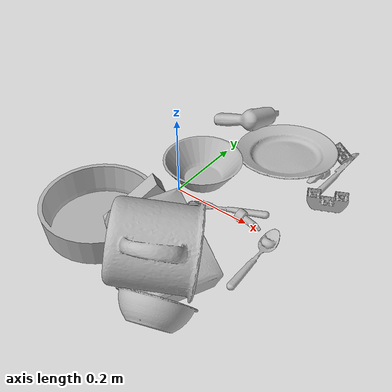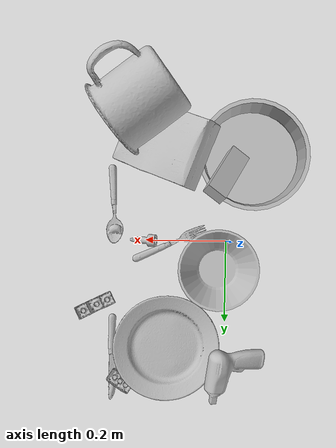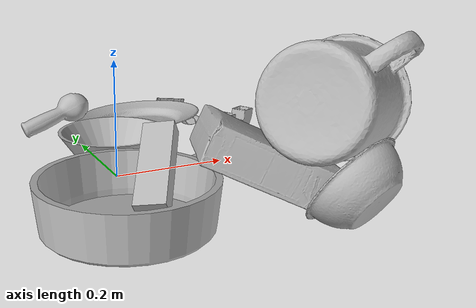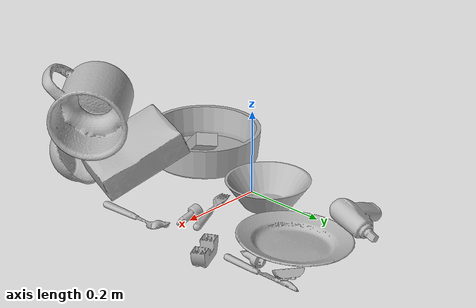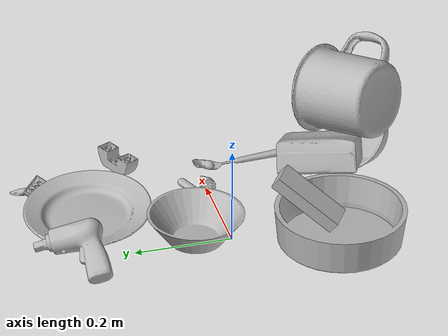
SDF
<sdf version="1.4">
  <world name="default">
    <light name="light1" type="point">
      <pose>0 0 1 0 0 0</pose>
      <diffuse>3 3 3 1</diffuse>
      <specular>3 3 3 1</specular>
    </light>
    <light name="light2" type="point">
      <pose>0 0.5 2 0 0 0</pose>
      <diffuse>1 1 1 1</diffuse>
      <specular>1 1 1 1</specular>
    </light>
    <light name="light3" type="point">
      <pose>0 0.5 2 0 0 0</pose>
      <diffuse>3 3 3 1</diffuse>
      <specular>3 3 3 1</specular>
    </light>
    <scene>
      <ambient>0.7 0.7 0.7</ambient>
    </scene>
    <model name="plate1">
      <link name="link_plate1">
        <collision name="default">
          <geometry>
            <mesh>
              <uri>model://plate/collision_meshes/collision.obj</uri>
              <scale>1.0 1.0 1.0</scale>
            </mesh>
          </geometry>
          <surface>
            <friction>
              <ode>
                <mu>0.5</mu>
                <mu2>0.5</mu2>
              </ode>
            </friction>
          <contact>
        <ode>
            <max_vel>0</max_vel>
            <min_depth>0.0001</min_depth>
            <kp>1e8</kp>
        </ode>
    </contact></surface>
        </collision>
        <visual name="default">
          <geometry>
            <mesh>
              <uri>model://plate/visual_meshes/visual.dae</uri>
              <scale>1.0 1.0 1.0</scale>
            </mesh>
          </geometry>
        </visual>
        <inertial>
          <mass>0.2627958059310913</mass>
          <pose>-0.0006044646725058556 0.00027825895813293755 -0.0010561998933553696 0.0022187866930069794 -0.0032254842153956703 0.4526099982878722</pose>
          <inertia>
            <ixx>0.0012293643</ixx>
            <iyy>0.0012176059</iyy>
            <izz>0.0024044532</izz>
            <ixy>0</ixy>
            <ixz>0</ixz>
            <iyz>0</iyz>
          </inertia>
        </inertial>
      </link>
      <pose>0.14386847615242004 0.2633576989173889 0.019896894693374634 -0.01974195089317124 0.08448001964364814 2.2319825376527005</pose>
    </model>
    <model name="plate2">
      <link name="link_plate2">
        <collision name="default">
          <geometry>
            <mesh>
              <uri>model://pan_tefal/collision_meshes/collision.obj</uri>
              <scale>1.0 1.0 1.0</scale>
            </mesh>
          </geometry>
          <surface>
            <friction>
              <ode>
                <mu>0.5</mu>
                <mu2>0.5</mu2>
              </ode>
            </friction>
          <contact>
        <ode>
            <max_vel>0</max_vel>
            <min_depth>0.0001</min_depth>
            <kp>1e8</kp>
        </ode>
    </contact></surface>
        </collision>
        <visual name="default">
          <geometry>
            <mesh>
              <uri>model://pan_tefal/visual_meshes/visual.dae</uri>
              <scale>1.0 1.0 1.0</scale>
            </mesh>
          </geometry>
        </visual>
        <inertial>
          <mass>1.5012701749801636</mass>
          <pose>-0.00018001999706029892 3.279017983004451e-05 -0.00851493701338768 0.0008190300793188327 -0.0003301349064117064 -0.3318640955526003</pose>
          <inertia>
            <ixx>0.010363197</ixx>
            <iyy>0.010430007</iyy>
            <izz>0.019076647</izz>
            <ixy>0</ixy>
            <ixz>0</ixz>
            <iyz>0</iyz>
          </inertia>
        </inertial>
      </link>
      <pose>-0.05808005854487419 -0.2073744684457779 0.03805013373494148 5.929760702843895e-07 -4.160355487756782e-06 0.3709783164828463</pose>
    </model>
    <model name="bowl1">
      <link name="link_bowl1">
        <collision name="default">
          <geometry>
            <mesh>
              <uri>model://bowl_a/collision_meshes/collision.obj</uri>
              <scale>1.0 1.0 1.0</scale>
            </mesh>
          </geometry>
          <surface>
            <friction>
              <ode>
                <mu>0.5</mu>
                <mu2>0.5</mu2>
              </ode>
            </friction>
          <contact>
        <ode>
            <max_vel>0</max_vel>
            <min_depth>0.0001</min_depth>
            <kp>1e8</kp>
        </ode>
    </contact></surface>
        </collision>
        <visual name="default">
          <geometry>
            <mesh>
              <uri>model://bowl_a/visual_meshes/visual.dae</uri>
              <scale>1.0 1.0 1.0</scale>
            </mesh>
          </geometry>
        </visual>
        <inertial>
          <mass>0.25230005383491516</mass>
          <pose>0.0002786753175314516 4.731153603643179e-05 -0.001376529224216938 -0.000980537182568925 -0.0010938202432478224 -0.19123453155183487</pose>
          <inertia>
            <ixx>0.00071831</ixx>
            <iyy>0.0007227198</iyy>
            <izz>0.0012775414</izz>
            <ixy>0</ixy>
            <ixz>0</ixz>
            <iyz>0</iyz>
          </inertia>
        </inertial>
      </link>
      <pose>0.020097751170396805 0.06918516755104065 0.030383003875613213 -4.3333826042016414e-08 2.9609221406133328e-08 2.5732590771336765</pose>
    </model>
    <model name="bowl2">
      <link name="link_bowl2">
        <collision name="default">
          <geometry>
            <mesh>
              <uri>model://bowl/collision_meshes/collision.obj</uri>
              <scale>1.0 1.0 1.0</scale>
            </mesh>
          </geometry>
          <surface>
            <friction>
              <ode>
                <mu>0.5</mu>
                <mu2>0.5</mu2>
              </ode>
            </friction>
          <contact>
        <ode>
            <max_vel>0</max_vel>
            <min_depth>0.0001</min_depth>
            <kp>1e8</kp>
        </ode>
    </contact></surface>
        </collision>
        <visual name="default">
          <geometry>
            <mesh>
              <uri>model://bowl/visual_meshes/visual.dae</uri>
              <scale>1.0 1.0 1.0</scale>
            </mesh>
          </geometry>
        </visual>
        <inertial>
          <mass>0.09131127595901489</mass>
          <pose>0.00020444947585929185 -0.0010302107548341155 -0.0008042654953896999 -0.01576413996306862 0.014546728377416086 0.7140363947853973</pose>
          <inertia>
            <ixx>0.00020974927</ixx>
            <iyy>0.00020506265</iyy>
            <izz>0.00035287044</izz>
            <ixy>0</ixy>
            <ixz>0</ixz>
            <iyz>0</iyz>
          </inertia>
        </inertial>
      </link>
      <pose>0.2320319414138794 -0.352546751499176 0.05671433359384537 0.9977924580699977 0.07221807197936997 -2.8494324804640736</pose>
    </model>
    <model name="silverware1">
      <link name="link_silverware1">
        <collision name="default">
          <geometry>
            <mesh>
              <uri>model://knife/collision_meshes/collision.obj</uri>
              <scale>1.0 1.0 1.0</scale>
            </mesh>
          </geometry>
          <surface>
            <friction>
              <ode>
                <mu>0.5</mu>
                <mu2>0.5</mu2>
              </ode>
            </friction>
          <contact>
        <ode>
            <max_vel>0</max_vel>
            <min_depth>0.0001</min_depth>
            <kp>1e8</kp>
        </ode>
    </contact></surface>
        </collision>
        <visual name="default">
          <geometry>
            <mesh>
              <uri>model://knife/visual_meshes/visual.dae</uri>
              <scale>1.0 1.0 1.0</scale>
            </mesh>
          </geometry>
        </visual>
        <inertial>
          <mass>0.033491987735033035</mass>
          <pose>-0.023785259574651718 0.00152751209679991 5.062024501967244e-05 0.07305195921562309 0.017248415702697233 -0.007409822782391368</pose>
          <inertia>
            <ixx>9.5063825e-07</ixx>
            <iyy>0.00012867076</iyy>
            <izz>0.00012897696</izz>
            <ixy>0</ixy>
            <ixz>0</ixz>
            <iyz>0</iyz>
          </inertia>
        </inertial>
      </link>
      <pose>0.27821478247642517 0.29190853238105774 0.005810712464153767 2.8893536366799277 0.025914571087549146 1.5714407347629062</pose>
    </model>
    <model name="box1">
      <link name="link_box1">
        <collision name="default">
          <geometry>
            <mesh>
              <uri>model://cracker_box/collision_meshes/collision.obj</uri>
              <scale>1.0 1.0 1.0</scale>
            </mesh>
          </geometry>
          <surface>
            <friction>
              <ode>
                <mu>0.5</mu>
                <mu2>0.5</mu2>
              </ode>
            </friction>
          <contact>
        <ode>
            <max_vel>0</max_vel>
            <min_depth>0.0001</min_depth>
            <kp>1e8</kp>
        </ode>
    </contact></surface>
        </collision>
        <visual name="default">
          <geometry>
            <mesh>
              <uri>model://cracker_box/visual_meshes/visual.dae</uri>
              <scale>1.0 1.0 1.0</scale>
            </mesh>
          </geometry>
        </visual>
        <inertial>
          <mass>3.401942253112793</mass>
          <pose>0.0009464150061830878 0.00025434247800149024 -0.001702953246422112 -0.00031620765582640923 -0.011106486806186075 0.0025467954673401043</pose>
          <inertia>
            <ixx>0.008653021</ixx>
            <iyy>0.014287839</iyy>
            <izz>0.020390058</izz>
            <ixy>0</ixy>
            <ixz>0</ixz>
            <iyz>0</iyz>
          </inertia>
        </inertial>
      </link>
      <pose>0.1529766470193863 -0.23095068335533142 0.07999446988105774 0.08995576890561653 -0.4116229652542419 2.7385728369947726</pose>
    </model>
    <model name="box2">
      <link name="link_box2">
        <collision name="default">
          <geometry>
            <mesh>
              <uri>model://jenga/collision_meshes/collision.obj</uri>
              <scale>1.0 1.0 1.0</scale>
            </mesh>
          </geometry>
          <surface>
            <friction>
              <ode>
                <mu>0.5</mu>
                <mu2>0.5</mu2>
              </ode>
            </friction>
          <contact>
        <ode>
            <max_vel>0</max_vel>
            <min_depth>0.0001</min_depth>
            <kp>1e8</kp>
        </ode>
    </contact></surface>
        </collision>
        <visual name="default">
          <geometry>
            <mesh>
              <uri>model://jenga/visual_meshes/visual.dae</uri>
              <scale>1.0 1.0 1.0</scale>
            </mesh>
          </geometry>
        </visual>
        <inertial>
          <mass>0.15917322039604187</mass>
          <pose>-2.502856091268768e-07 -0.00010250010382151231 -4.0923405322246253e-05 0.0 -7.34215461761844e-07 0.0</pose>
          <inertia>
            <ixx>4.4047094e-05</ixx>
            <iyy>0.0002984619</iyy>
            <izz>0.00031863348</izz>
            <ixy>0</ixy>
            <ixz>0</ixz>
            <iyz>0</iyz>
          </inertia>
        </inertial>
      </link>
      <pose>0.005460839252918959 -0.16071990132331848 0.066205233335495 -0.1733736247140317 -0.6211530050331988 1.045538599646955</pose>
    </model>
    <model name="cup1">
      <link name="link_cup1">
        <collision name="default">
          <geometry>
            <mesh>
              <uri>model://mug/collision_meshes/collision.obj</uri>
              <scale>2.0 2.0 2.0</scale>
            </mesh>
          </geometry>
          <surface>
            <friction>
              <ode>
                <mu>0.5</mu>
                <mu2>0.5</mu2>
              </ode>
            </friction>
          <contact>
        <ode>
            <max_vel>0</max_vel>
            <min_depth>0.0001</min_depth>
            <kp>1e8</kp>
        </ode>
    </contact></surface>
        </collision>
        <visual name="default">
          <geometry>
            <mesh>
              <uri>model://mug/visual_meshes/visual.dae</uri>
              <scale>2.0 2.0 2.0</scale>
            </mesh>
          </geometry>
        </visual>
        <inertial>
          <mass>1.8939067125320435</mass>
          <pose>0.019143342971801758 0.0016286505851894617 -0.02189466543495655 -0.12983139039190478 0.08737723243087561 0.05507286357129759</pose>
          <inertia>
            <ixx>0.0075250226</ixx>
            <iyy>0.008405008</iyy>
            <izz>0.009720505</izz>
            <ixy>0</ixy>
            <ixz>0</ixz>
            <iyz>0</iyz>
          </inertia>
        </inertial>
      </link>
      <pose>0.21377137303352356 -0.3211495876312256 0.19430111348628998 1.7779416760410955 0.740116760265927 2.332492205281623</pose>
    </model>
    <model name="silverware2">
      <link name="link_silverware2">
        <collision name="default">
          <geometry>
            <mesh>
              <uri>model://fork/collision_meshes/collision.obj</uri>
              <scale>1.0 1.0 1.0</scale>
            </mesh>
          </geometry>
          <surface>
            <friction>
              <ode>
                <mu>0.5</mu>
                <mu2>0.5</mu2>
              </ode>
            </friction>
          <contact>
        <ode>
            <max_vel>0</max_vel>
            <min_depth>0.0001</min_depth>
            <kp>1e8</kp>
        </ode>
    </contact></surface>
        </collision>
        <visual name="default">
          <geometry>
            <mesh>
              <uri>model://fork/visual_meshes/visual.dae</uri>
              <scale>1.0 1.0 1.0</scale>
            </mesh>
          </geometry>
        </visual>
        <inertial>
          <mass>0.01107261423021555</mass>
          <pose>-0.02957005240023136 0.00046588238910771906 0.0003218861820641905 -0.01355183639158028 -0.010977839693189282 0.014453902572364752</pose>
          <inertia>
            <ixx>3.8815773e-07</ixx>
            <iyy>2.8907412e-05</iyy>
            <izz>2.9081024e-05</izz>
            <ixy>0</ixy>
            <ixz>0</ixz>
            <iyz>0</iyz>
          </inertia>
        </inertial>
      </link>
      <pose>0.1415131390094757 0.008739102631807327 0.00744660897180438 -3.063499443037254 0.002835924480979445 -2.7195281840072933</pose>
    </model>
    <model name="silverware3">
      <link name="link_silverware3">
        <collision name="default">
          <geometry>
            <mesh>
              <uri>model://spoon/collision_meshes/collision.obj</uri>
              <scale>1.0 1.0 1.0</scale>
            </mesh>
          </geometry>
          <surface>
            <friction>
              <ode>
                <mu>0.5</mu>
                <mu2>0.5</mu2>
              </ode>
            </friction>
          <contact>
        <ode>
            <max_vel>0</max_vel>
            <min_depth>0.0001</min_depth>
            <kp>1e8</kp>
        </ode>
    </contact></surface>
        </collision>
        <visual name="default">
          <geometry>
            <mesh>
              <uri>model://spoon/visual_meshes/visual.dae</uri>
              <scale>1.0 1.0 1.0</scale>
            </mesh>
          </geometry>
        </visual>
        <inertial>
          <mass>0.03720218688249588</mass>
          <pose>-0.005526323337107897 -0.00160341733135283 -0.0007271655485965312 0.035216710753312216 -0.03906584126265578 0.006150608185168733</pose>
          <inertia>
            <ixx>2.0692462e-06</ixx>
            <iyy>0.00014155307</iyy>
            <izz>0.00014257352</izz>
            <ixy>0</ixy>
            <ixz>0</ixz>
            <iyz>0</iyz>
          </inertia>
        </inertial>
      </link>
      <pose>0.27932989597320557 -0.08761804550886154 0.008385260589420795 0.006729560655436749 0.02689299165148386 1.6203707399075176</pose>
    </model>
    <model name="toy1">
      <link name="link_toy1">
        <collision name="default">
          <geometry>
            <mesh>
              <uri>model://e_toy_airplane/collision_meshes/collision.obj</uri>
              <scale>1.0 1.0 1.0</scale>
            </mesh>
          </geometry>
          <surface>
            <friction>
              <ode>
                <mu>0.5</mu>
                <mu2>0.5</mu2>
              </ode>
            </friction>
          <contact>
        <ode>
            <max_vel>0</max_vel>
            <min_depth>0.0001</min_depth>
            <kp>1e8</kp>
        </ode>
    </contact></surface>
        </collision>
        <visual name="default">
          <geometry>
            <mesh>
              <uri>model://e_toy_airplane/visual_meshes/visual.dae</uri>
              <scale>1.0 1.0 1.0</scale>
            </mesh>
          </geometry>
        </visual>
        <inertial>
          <mass>0.02491888962686062</mass>
          <pose>0.00011740486661437899 -2.248287455586251e-05 -0.011187204159796238 0.00551850201937057 0.009228289896812953 0.1504152046419029</pose>
          <inertia>
            <ixx>7.60553e-06</ixx>
            <iyy>7.52773e-06</iyy>
            <izz>2.2857607e-06</izz>
            <ixy>0</ixy>
            <ixz>0</ixz>
            <iyz>0</iyz>
          </inertia>
        </inertial>
      </link>
      <pose>0.25063368678092957 0.23518234491348267 0.014858817681670189 2.114022442847485 1.517054880577927 0.3686188911571275</pose>
    </model>
    <model name="toy2">
      <link name="link_toy2">
        <collision name="default">
          <geometry>
            <mesh>
              <uri>model://e_lego_duplo/collision_meshes/collision.obj</uri>
              <scale>1.0 1.0 1.0</scale>
            </mesh>
          </geometry>
          <surface>
            <friction>
              <ode>
                <mu>0.5</mu>
                <mu2>0.5</mu2>
              </ode>
            </friction>
          <contact>
        <ode>
            <max_vel>0</max_vel>
            <min_depth>0.0001</min_depth>
            <kp>1e8</kp>
        </ode>
    </contact></surface>
        </collision>
        <visual name="default">
          <geometry>
            <mesh>
              <uri>model://e_lego_duplo/visual_meshes/visual.dae</uri>
              <scale>1.0 1.0 1.0</scale>
            </mesh>
          </geometry>
        </visual>
        <inertial>
          <mass>0.08635181933641434</mass>
          <pose>0.00032560451654717326 0.0002348542184336111 0.0019521444337442517 -0.022567902749969417 -6.824781923482006e-05 -0.00762515629770681</pose>
          <inertia>
            <ixx>1.8007207e-05</ixx>
            <iyy>7.390619e-05</iyy>
            <izz>7.1969785e-05</izz>
            <ixy>0</ixy>
            <ixz>0</ixz>
            <iyz>0</iyz>
          </inertia>
        </inertial>
      </link>
      <pose>0.31811413168907166 0.16084828972816467 0.021755460649728775 -3.1248235575902448 -0.0022752533554349463 0.4546791377019385</pose>
    </model>
    <model name="toy3">
      <link name="link_toy3">
        <collision name="default">
          <geometry>
            <mesh>
              <uri>model://d_toy_airplane/collision_meshes/collision.obj</uri>
              <scale>1.0 1.0 1.0</scale>
            </mesh>
          </geometry>
          <surface>
            <friction>
              <ode>
                <mu>0.5</mu>
                <mu2>0.5</mu2>
              </ode>
            </friction>
          <contact>
        <ode>
            <max_vel>0</max_vel>
            <min_depth>0.0001</min_depth>
            <kp>1e8</kp>
        </ode>
    </contact></surface>
        </collision>
        <visual name="default">
          <geometry>
            <mesh>
              <uri>model://d_toy_airplane/visual_meshes/visual.dae</uri>
              <scale>1.0 1.0 1.0</scale>
            </mesh>
          </geometry>
        </visual>
        <inertial>
          <mass>0.01398532185703516</mass>
          <pose>9.410311031388119e-05 -5.809316644445062e-05 -0.011728093959391117 0.00026700916858413164 0.004678987951971881 0.5194708538811167</pose>
          <inertia>
            <ixx>4.1925277e-06</ixx>
            <iyy>4.1956896e-06</iyy>
            <izz>1.2657512e-06</izz>
            <ixy>0</ixy>
            <ixz>0</ixz>
            <iyz>0</iyz>
          </inertia>
        </inertial>
      </link>
      <pose>0.20707714557647705 0.00019591793534345925 0.0112753389403224 2.3273411014368754 1.2427096280412486 2.2720545335526063</pose>
    </model>
    <model name="toy4">
      <link name="link_toy4">
        <collision name="default">
          <geometry>
            <mesh>
              <uri>model://b_toy_airplane/collision_meshes/collision.obj</uri>
              <scale>1.0 1.0 1.0</scale>
            </mesh>
          </geometry>
          <surface>
            <friction>
              <ode>
                <mu>0.5</mu>
                <mu2>0.5</mu2>
              </ode>
            </friction>
          <contact>
        <ode>
            <max_vel>0</max_vel>
            <min_depth>0.0001</min_depth>
            <kp>1e8</kp>
        </ode>
    </contact></surface>
        </collision>
        <visual name="default">
          <geometry>
            <mesh>
              <uri>model://b_toy_airplane/visual_meshes/visual.dae</uri>
              <scale>1.0 1.0 1.0</scale>
            </mesh>
          </geometry>
        </visual>
        <inertial>
          <mass>0.39888885617256165</mass>
          <pose>0.00508136348798871 0.0040155863389372826 0.009543065913021564 -0.04001810285123905 -0.040221831504284974 -0.560150355465512</pose>
          <inertia>
            <ixx>0.00074054446</ixx>
            <iyy>0.00029600295</iyy>
            <izz>0.00092131115</izz>
            <ixy>0</ixy>
            <ixz>0</ixz>
            <iyz>0</iyz>
          </inertia>
        </inertial>
      </link>
      <pose>-0.012353384867310524 0.30578187108039856 0.051860034465789795 2.8241148650019094 0.22250184383437904 1.4561196470371125</pose>
    </model>
    <model name="toy5">
      <link name="link_toy5">
        <collision name="default">
          <geometry>
            <mesh>
              <uri>model://a_lego_duplo/collision_meshes/collision.obj</uri>
              <scale>1.0 1.0 1.0</scale>
            </mesh>
          </geometry>
          <surface>
            <friction>
              <ode>
                <mu>0.5</mu>
                <mu2>0.5</mu2>
              </ode>
            </friction>
          <contact>
        <ode>
            <max_vel>0</max_vel>
            <min_depth>0.0001</min_depth>
            <kp>1e8</kp>
        </ode>
    </contact></surface>
        </collision>
        <visual name="default">
          <geometry>
            <mesh>
              <uri>model://a_lego_duplo/visual_meshes/visual.dae</uri>
              <scale>1.0 1.0 1.0</scale>
            </mesh>
          </geometry>
        </visual>
        <inertial>
          <mass>0.014756478369235992</mass>
          <pose>-0.00011337623436702415 0.00018517495482228696 0.00036926049506291747 -0.01411700810413075 -0.00012565743579302476 6.142605902116464e-05</pose>
          <inertia>
            <ixx>1.8918981e-06</ixx>
            <iyy>4.238266e-06</iyy>
            <izz>5.250033e-06</izz>
            <ixy>0</ixy>
            <ixz>0</ixz>
            <iyz>0</iyz>
          </inertia>
        </inertial>
      </link>
      <pose>0.25719934701919556 0.35019832849502563 0.01643935777246952 -2.6619316374532325 -2.9787552038238645e-06 -0.600248785231113</pose>
    </model>
  <physics type="ode">
      <max_contacts>50</max_contacts>
      <ode>
        <solver>
          <type>quick</type>
          <iters>75</iters>
        </solver>
        <constraints>
          <contact_max_correcting_vel>0</contact_max_correcting_vel>
          <contact_surface_layer>0</contact_surface_layer>
        </constraints>
      </ode>
    </physics></world>
</sdf>
